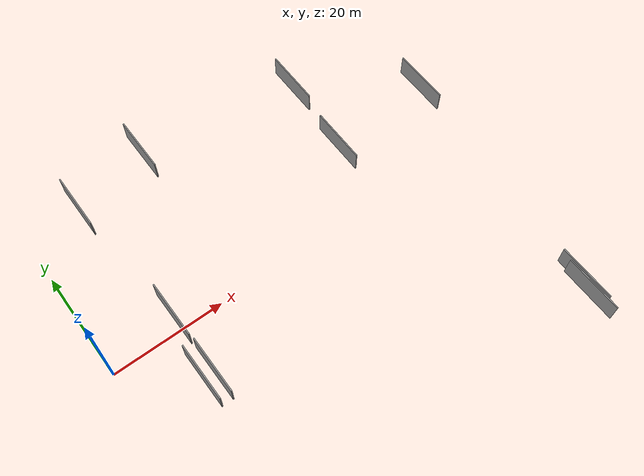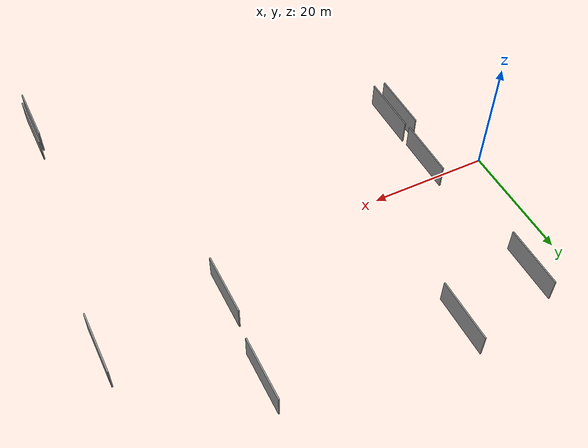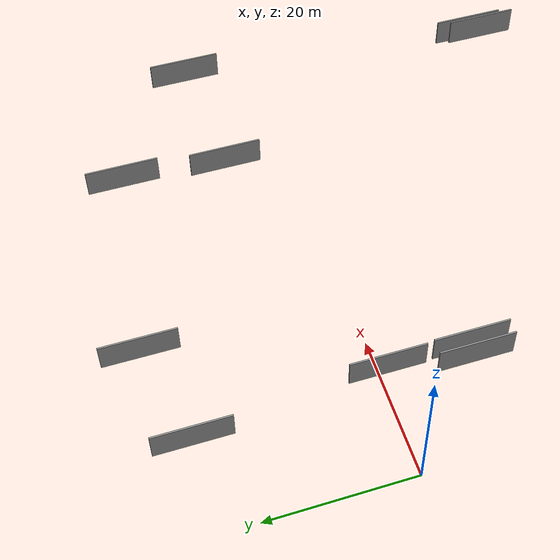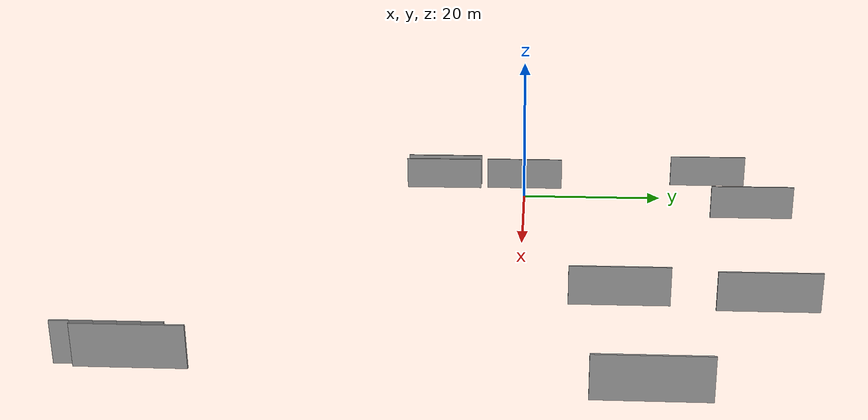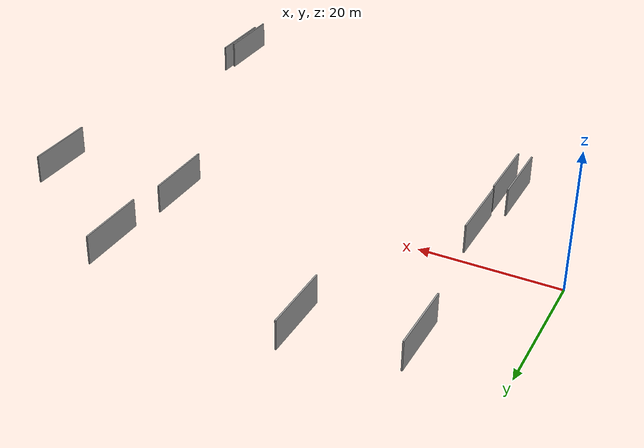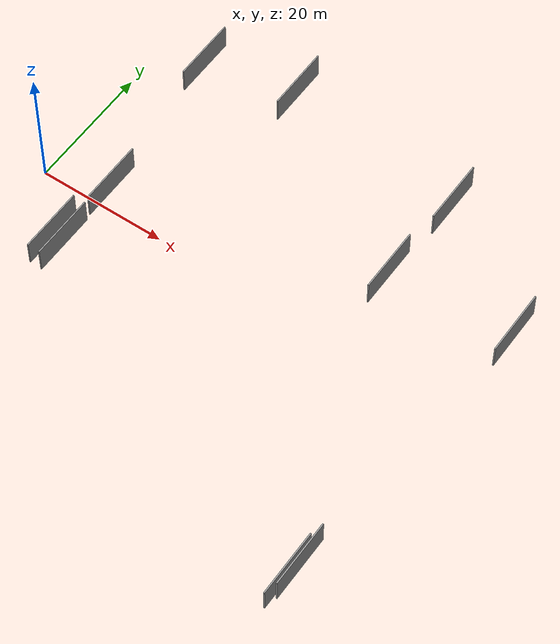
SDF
<sdf version="1.6">
 <world name="default">
  <scene>
   <sky><clouds><speed>12</speed></clouds></sky>
   <ambient>0.4 0.4 0.4 1</ambient>
   <background>0.7 0.7 0.7 1</background>
   <shadows>1</shadows>
  </scene>
  <gravity>0 0 -9.8066</gravity>
  <magnetic_field>6e-06 2.3e-05 -4.2e-05</magnetic_field>
  <physics default="0" name="default_physics" type="ode">
   <ode>
    <solver>
     <type>quick</type>
     <iters>10</iters>
     <sor>1.0</sor>
     <use_dynamic_moi_rescaling>0</use_dynamic_moi_rescaling>
    </solver>
    <constraints>
     <cfm>0</cfm>
     <erp>0.2</erp>
     <contact_max_correcting_vel>100</contact_max_correcting_vel>
     <contact_surface_layer>0.001</contact_surface_layer>
    </constraints>
   </ode>
   <max_step_size>0.004</max_step_size>
   <real_time_factor>1</real_time_factor>
   <real_time_update_rate>250</real_time_update_rate>
  </physics>
  <light name="sun" type="directional">
   <pose>0 0 10 0 0 0</pose>
   <diffuse>0.8 0.8 0.8 1</diffuse>
   <specular>0.2 0.2 0.2 1</specular>
   <attenuation>
    <range>1000</range>
    <constant>0.9</constant>
    <linear>0.01</linear>
    <quadratic>0.001</quadratic>
   </attenuation>
   <direction>-0.5 0.1 -0.9</direction>
  </light>
  <model name="grey_wall_1">
   <static>1</static>
   <pose>66.2518 -32.7811 5.0 0.000000 0.000000 1.570796</pose>
   <link name="link">
    <pose>0 0 2.00 0 0 0</pose>
    <collision name="collision"><geometry><box><size>10.00 0.2 4.00</size></box></geometry></collision>
    <visual name="visual">
     <cast_shadows>0</cast_shadows>
     <geometry><box><size>10.00 0.2 4.00</size></box></geometry>
     <material>
      <script>
       <uri>model://grey_wall/materials/scripts</uri>
       <uri>model://grey_wall/materials/textures</uri>
       <name>vrc/grey_wall</name>
      </script>
     </material>
    </visual>
   </link>
  </model>
  <model name="grey_wall_2">
   <static>1</static>
   <pose>12.1772 -10.7422 5.0 0.000000 0.000000 1.570796</pose>
   <link name="link">
    <pose>0 0 2.00 0 0 0</pose>
    <collision name="collision"><geometry><box><size>10.00 0.2 4.00</size></box></geometry></collision>
    <visual name="visual">
     <cast_shadows>0</cast_shadows>
     <geometry><box><size>10.00 0.2 4.00</size></box></geometry>
     <material>
      <script>
       <uri>model://grey_wall/materials/scripts</uri>
       <uri>model://grey_wall/materials/textures</uri>
       <name>vrc/grey_wall</name>
      </script>
     </material>
    </visual>
   </link>
  </model>
  <model name="grey_wall_3">
   <static>1</static>
   <pose>11.9733 0.1743 5.0 0.000000 0.000000 1.570796</pose>
   <link name="link">
    <pose>0 0 2.00 0 0 0</pose>
    <collision name="collision"><geometry><box><size>10.00 0.2 4.00</size></box></geometry></collision>
    <visual name="visual">
     <cast_shadows>0</cast_shadows>
     <geometry><box><size>10.00 0.2 4.00</size></box></geometry>
     <material>
      <script>
       <uri>model://grey_wall/materials/scripts</uri>
       <uri>model://grey_wall/materials/textures</uri>
       <name>vrc/grey_wall</name>
      </script>
     </material>
    </visual>
   </link>
  </model>
  <model name="grey_wall_4">
   <static>1</static>
   <pose>50.9822 9.9725 5.0 0.000000 0.000000 1.570796</pose>
   <link name="link">
    <pose>0 0 2.00 0 0 0</pose>
    <collision name="collision"><geometry><box><size>10.00 0.2 4.00</size></box></geometry></collision>
    <visual name="visual">
     <cast_shadows>0</cast_shadows>
     <geometry><box><size>10.00 0.2 4.00</size></box></geometry>
     <material>
      <script>
       <uri>model://grey_wall/materials/scripts</uri>
       <uri>model://grey_wall/materials/textures</uri>
       <name>vrc/grey_wall</name>
      </script>
     </material>
    </visual>
   </link>
  </model>
  <model name="grey_wall_5">
   <static>1</static>
   <pose>10.2536 -10.6869 5.0 0.000000 0.000000 1.570796</pose>
   <link name="link">
    <pose>0 0 2.00 0 0 0</pose>
    <collision name="collision"><geometry><box><size>10.00 0.2 4.00</size></box></geometry></collision>
    <visual name="visual">
     <cast_shadows>0</cast_shadows>
     <geometry><box><size>10.00 0.2 4.00</size></box></geometry>
     <material>
      <script>
       <uri>model://grey_wall/materials/scripts</uri>
       <uri>model://grey_wall/materials/textures</uri>
       <name>vrc/grey_wall</name>
      </script>
     </material>
    </visual>
   </link>
  </model>
  <model name="grey_wall_6">
   <static>1</static>
   <pose>9.6014 25.1187 5.0 0.000000 0.000000 1.570796</pose>
   <link name="link">
    <pose>0 0 2.00 0 0 0</pose>
    <collision name="collision"><geometry><box><size>10.00 0.2 4.00</size></box></geometry></collision>
    <visual name="visual">
     <cast_shadows>0</cast_shadows>
     <geometry><box><size>10.00 0.2 4.00</size></box></geometry>
     <material>
      <script>
       <uri>model://grey_wall/materials/scripts</uri>
       <uri>model://grey_wall/materials/textures</uri>
       <name>vrc/grey_wall</name>
      </script>
     </material>
    </visual>
   </link>
  </model>
  <model name="grey_wall_7">
   <static>1</static>
   <pose>69.9398 11.0900 5.0 0.000000 0.000000 1.570796</pose>
   <link name="link">
    <pose>0 0 2.00 0 0 0</pose>
    <collision name="collision"><geometry><box><size>10.00 0.2 4.00</size></box></geometry></collision>
    <visual name="visual">
     <cast_shadows>0</cast_shadows>
     <geometry><box><size>10.00 0.2 4.00</size></box></geometry>
     <material>
      <script>
       <uri>model://grey_wall/materials/scripts</uri>
       <uri>model://grey_wall/materials/textures</uri>
       <name>vrc/grey_wall</name>
      </script>
     </material>
    </visual>
   </link>
  </model>
  <model name="grey_wall_8">
   <static>1</static>
   <pose>23.4397 28.3290 5.0 0.000000 0.000000 1.570796</pose>
   <link name="link">
    <pose>0 0 2.00 0 0 0</pose>
    <collision name="collision"><geometry><box><size>10.00 0.2 4.00</size></box></geometry></collision>
    <visual name="visual">
     <cast_shadows>0</cast_shadows>
     <geometry><box><size>10.00 0.2 4.00</size></box></geometry>
     <material>
      <script>
       <uri>model://grey_wall/materials/scripts</uri>
       <uri>model://grey_wall/materials/textures</uri>
       <name>vrc/grey_wall</name>
      </script>
     </material>
    </visual>
   </link>
  </model>
  <model name="grey_wall_9">
   <static>1</static>
   <pose>65.7572 -34.7129 5.0 0.000000 0.000000 1.570796</pose>
   <link name="link">
    <pose>0 0 2.00 0 0 0</pose>
    <collision name="collision"><geometry><box><size>10.00 0.2 4.00</size></box></geometry></collision>
    <visual name="visual">
     <cast_shadows>0</cast_shadows>
     <geometry><box><size>10.00 0.2 4.00</size></box></geometry>
     <material>
      <script>
       <uri>model://grey_wall/materials/scripts</uri>
       <uri>model://grey_wall/materials/textures</uri>
       <name>vrc/grey_wall</name>
      </script>
     </material>
    </visual>
   </link>
  </model>
  <model name="grey_wall_10">
   <static>1</static>
   <pose>51.8866 24.2791 5.0 0.000000 0.000000 1.570796</pose>
   <link name="link">
    <pose>0 0 2.00 0 0 0</pose>
    <collision name="collision"><geometry><box><size>10.00 0.2 4.00</size></box></geometry></collision>
    <visual name="visual">
     <cast_shadows>0</cast_shadows>
     <geometry><box><size>10.00 0.2 4.00</size></box></geometry>
     <material>
      <script>
       <uri>model://grey_wall/materials/scripts</uri>
       <uri>model://grey_wall/materials/textures</uri>
       <name>vrc/grey_wall</name>
      </script>
     </material>
    </visual>
   </link>
  </model>
 </world>
</sdf>
